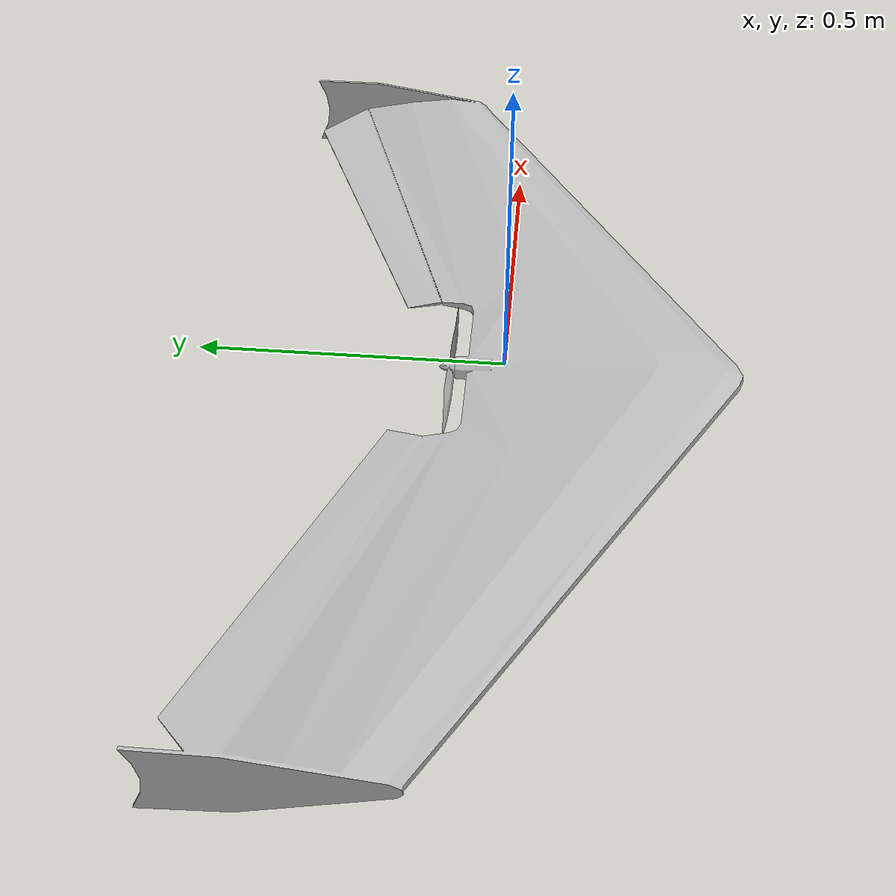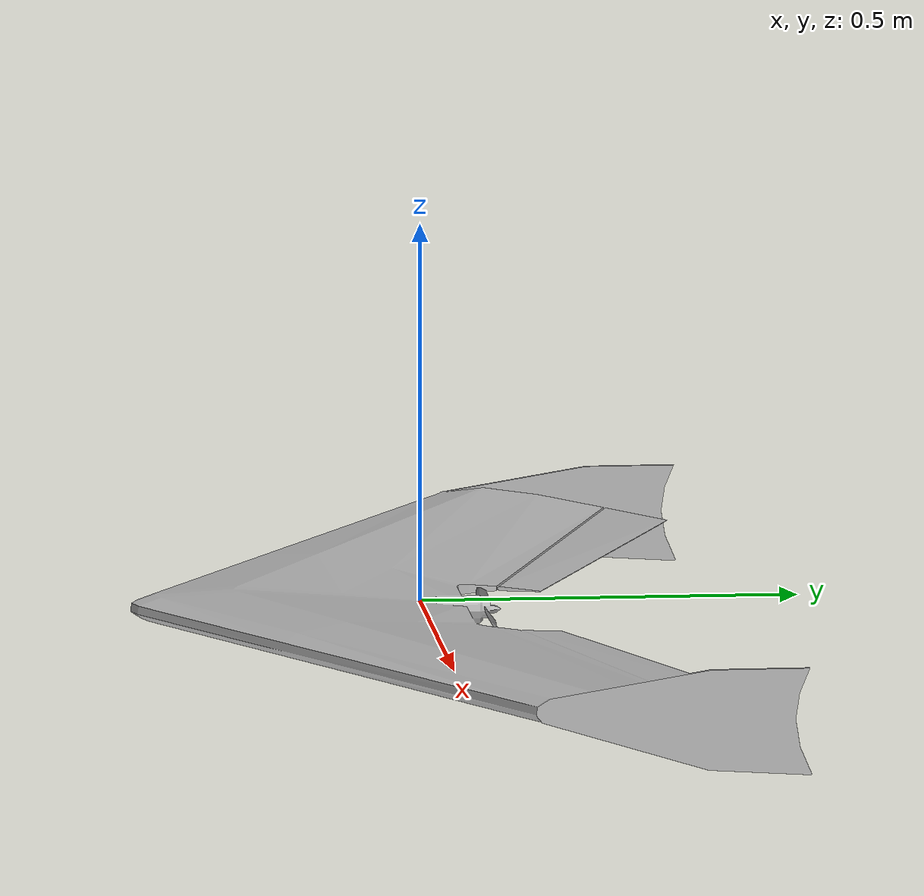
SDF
<sdf version='1.9'>
    <model name='fixedwing'>
      <link name='link'>
        <visual name='visual'>
          <geometry>
            <mesh>
              <uri>file:///Aircraft/xacro/meshes/fixedwing.dae</uri>
            </mesh>
          </geometry>
        </visual>

        <collision name='collision'>
          <geometry>
            <mesh>
              <uri>file:///Aircraft/xacro/meshes/fixedwing.dae</uri>
            </mesh>
          </geometry>
        </collision>

        <pose>0 0 0 0 0 0</pose>

        <inertial>
          <pose>0 0 0 0 0 0</pose>
          <mass>1</mass>
          <inertia>
            <ixx>0.1147</ixx>
            <ixy>0</ixy>
            <ixz>0</ixz>
            <iyy>1</iyy>
            <iyz>0</iyz>
            <izz>1</izz>
          </inertia>
        </inertial>

        <enable_wind>true</enable_wind>

      </link>

      <static>false</static>
      <self_collide>true</self_collide>
    </model>
</sdf>
